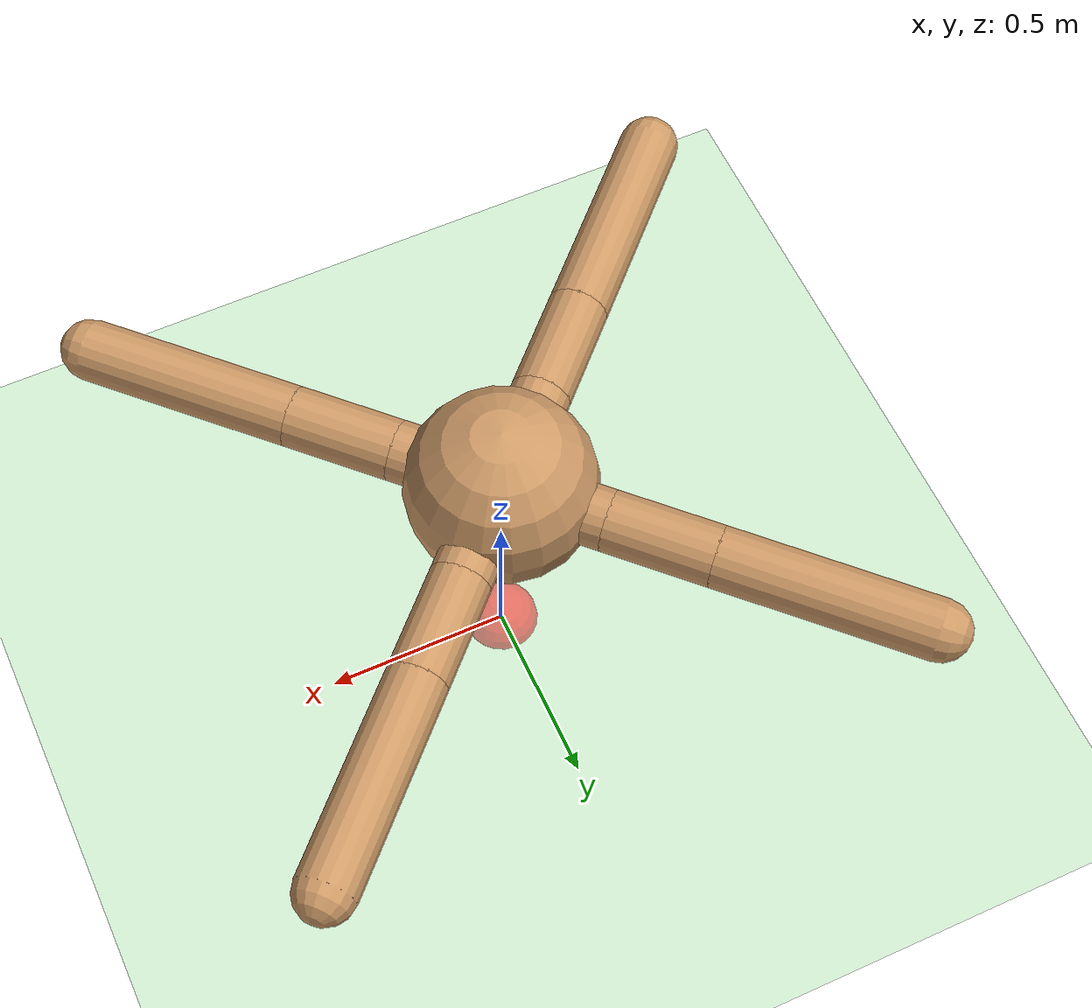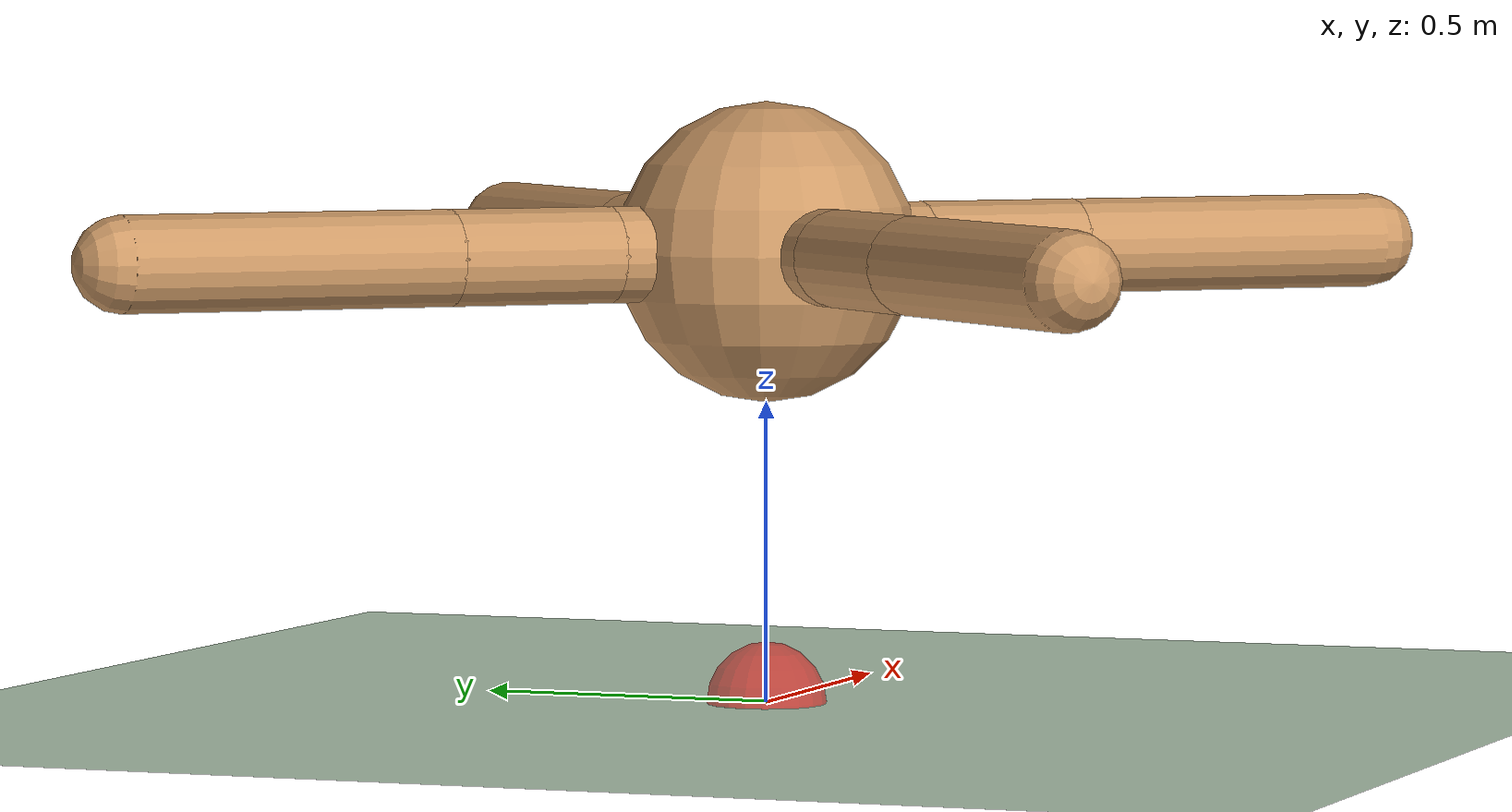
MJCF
<!-- Same a gymnasium ant but with sites -->
<mujoco model="ant">
<compiler angle="degree" coordinate="local" inertiafromgeom="true"/>
<option integrator="RK4" timestep="0.01"/>
<custom>
  <numeric data="0.0 0.0 0.55 1.0 0.0 0.0 0.0 0.0 1.0 0.0 -1.0 0.0 -1.0 0.0 1.0" name="init_qpos"/>
</custom>
<default>
  <joint armature="1" damping="1" limited="true"/>
  <geom conaffinity="0" condim="3" density="5.0" friction="1 0.5 0.5" margin="0.01" rgba="0.8 0.6 0.4 1"/>
</default>
<asset>
  <texture builtin="gradient" height="100" rgb1="1 1 1" rgb2="0 0 0" type="skybox" width="100"/>
  <texture builtin="flat" height="1278" mark="cross" markrgb="1 1 1" name="texgeom" random="0.01" rgb1="0.8 0.6 0.4" rgb2="0.8 0.6 0.4" type="cube" width="127"/>
  <texture builtin="checker" height="100" name="texplane" rgb1="0 0 0" rgb2="0.8 0.8 0.8" type="2d" width="100"/>
  <material name="MatPlane" reflectance="0.5" shininess="1" specular="1" texrepeat="60 60" texture="texplane"/>
  <material name="geom" texture="texgeom" texuniform="true"/>
</asset>
<worldbody>
  <light cutoff="100" diffuse="1 1 1" dir="-0 0 -1.3" directional="true" exponent="1" pos="0 0 1.3" specular=".1 .1 .1"/>
  <geom conaffinity="1" condim="3" material="MatPlane" name="floor" pos="0 0 0" rgba="0.8 0.9 0.8 1" size="40 40 40" type="plane"/>
  <body name="torso" pos="0 0 0.75">
    <geom name="torso_geom" pos="0 0 0" size="0.25" type="sphere"/>
    <joint armature="0" damping="0" limited="false" margin="0.01" name="root" pos="0 0 0" type="free"/>
    <body name="front_left_leg" pos="0 0 0">
      <geom fromto="0.0 0.0 0.0 0.2 0.2 0.0" name="aux_1_geom" size="0.08" type="capsule"/>
      <body name="aux_1" pos="0.2 0.2 0">
        <joint axis="0 0 1" name="hip_1" pos="0.0 0.0 0.0" range="-30 30" type="hinge"/>
        <geom fromto="0.0 0.0 0.0 0.2 0.2 0.0" name="left_leg_geom" size="0.08" type="capsule"/>
        <body pos="0.2 0.2 0">
          <joint axis="-1 1 0" name="ankle_1" pos="0.0 0.0 0.0" range="30 70" type="hinge"/>
          <geom fromto="0.0 0.0 0.0 0.4 0.4 0.0" name="left_ankle_geom" size="0.08" type="capsule"/>
        </body>
      </body>
    </body>
    <body name="front_right_leg" pos="0 0 0">
      <geom fromto="0.0 0.0 0.0 -0.2 0.2 0.0" name="aux_2_geom" size="0.08" type="capsule"/>
      <body name="aux_2" pos="-0.2 0.2 0">
        <joint axis="0 0 1" name="hip_2" pos="0.0 0.0 0.0" range="-30 30" type="hinge"/>
        <geom fromto="0.0 0.0 0.0 -0.2 0.2 0.0" name="right_leg_geom" size="0.08" type="capsule"/>
        <body pos="-0.2 0.2 0">
          <joint axis="1 1 0" name="ankle_2" pos="0.0 0.0 0.0" range="-70 -30" type="hinge"/>
          <geom fromto="0.0 0.0 0.0 -0.4 0.4 0.0" name="right_ankle_geom" size="0.08" type="capsule"/>
        </body>
      </body>
    </body>
    <body name="back_leg" pos="0 0 0">
      <geom fromto="0.0 0.0 0.0 -0.2 -0.2 0.0" name="aux_3_geom" size="0.08" type="capsule"/>
      <body name="aux_3" pos="-0.2 -0.2 0">
        <joint axis="0 0 1" name="hip_3" pos="0.0 0.0 0.0" range="-30 30" type="hinge"/>
        <geom fromto="0.0 0.0 0.0 -0.2 -0.2 0.0" name="back_leg_geom" size="0.08" type="capsule"/>
        <body pos="-0.2 -0.2 0">
          <joint axis="-1 1 0" name="ankle_3" pos="0.0 0.0 0.0" range="-70 -30" type="hinge"/>
          <geom fromto="0.0 0.0 0.0 -0.4 -0.4 0.0" name="third_ankle_geom" size="0.08" type="capsule"/>
        </body>
      </body>
    </body>
    <body name="right_back_leg" pos="0 0 0">
      <geom fromto="0.0 0.0 0.0 0.2 -0.2 0.0" name="aux_4_geom" size="0.08" type="capsule"/>
      <body name="aux_4" pos="0.2 -0.2 0">
        <joint axis="0 0 1" name="hip_4" pos="0.0 0.0 0.0" range="-30 30" type="hinge"/>
        <geom fromto="0.0 0.0 0.0 0.2 -0.2 0.0" name="rightback_leg_geom" size="0.08" type="capsule"/>
        <body pos="0.2 -0.2 0">
          <joint axis="1 1 0" name="ankle_4" pos="0.0 0.0 0.0" range="30 70" type="hinge"/>
          <geom fromto="0.0 0.0 0.0 0.4 -0.4 0.0" name="fourth_ankle_geom" size="0.08" type="capsule"/>
        </body>
      </body>
    </body>
  </body>
  <!--Create a goal version of the ant for visualization-->
  <body name="goal_torso" pos="0 0 0.75">
    <geom name="goal_torso_geom" pos="0 0 0" size="0.25" type="sphere" conaffinity="0" rgba="0.8 0.8 0.3 0.35" density="0.1"/>
    <joint armature="0" damping="0" limited="false" margin="0.01" name="goal_root" pos="0 0 0" type="free"/>
    <body name="goal_front_left_leg" pos="0 0 0">
      <geom fromto="0.0 0.0 0.0 0.2 0.2 0.0" name="goal_aux_1_geom" size="0.08" type="capsule" conaffinity="0" rgba="0.8 0.8 0.3 0.35"/>
      <body name="goal_aux_1" pos="0.2 0.2 0">
        <joint axis="0 0 1" name="goal_hip_1" pos="0.0 0.0 0.0" range="-30 30" type="hinge"/>
        <geom fromto="0.0 0.0 0.0 0.2 0.2 0.0" name="goal_left_leg_geom" size="0.08" type="capsule" conaffinity="0" rgba="0.8 0.8 0.3 0.35"/>
        <body pos="0.2 0.2 0">
          <joint axis="-1 1 0" name="goal_ankle_1" pos="0.0 0.0 0.0" range="30 70" type="hinge"/>
          <geom fromto="0.0 0.0 0.0 0.4 0.4 0.0" name="goal_left_ankle_geom" size="0.08" type="capsule" conaffinity="0" rgba="0.8 0.8 0.3 0.35"/>
        </body>
      </body>
    </body>
    <body name="goal_front_right_leg" pos="0 0 0">
      <geom fromto="0.0 0.0 0.0 -0.2 0.2 0.0" name="goal_aux_2_geom" size="0.08" type="capsule" conaffinity="0" rgba="0.8 0.8 0.3 0.35"/>
      <body name="goal_aux_2" pos="-0.2 0.2 0">
        <joint axis="0 0 1" name="goal_hip_2" pos="0.0 0.0 0.0" range="-30 30" type="hinge"/>
        <geom fromto="0.0 0.0 0.0 -0.2 0.2 0.0" name="goal_right_leg_geom" size="0.08" type="capsule" conaffinity="0" rgba="0.8 0.8 0.3 0.35"/>
        <body pos="-0.2 0.2 0">
          <joint axis="1 1 0" name="goal_ankle_2" pos="0.0 0.0 0.0" range="-70 -30" type="hinge"/>
          <geom fromto="0.0 0.0 0.0 -0.4 0.4 0.0" name="goal_right_ankle_geom" size="0.08" type="capsule" conaffinity="0" rgba="0.8 0.8 0.3 0.35"/>
        </body>
      </body>
    </body>
    <body name="goal_back_leg" pos="0 0 0">
      <geom fromto="0.0 0.0 0.0 -0.2 -0.2 0.0" name="goal_aux_3_geom" size="0.08" type="capsule" conaffinity="0" rgba="0.8 0.8 0.3 0.35"/>
      <body name="goal_aux_3" pos="-0.2 -0.2 0">
        <joint axis="0 0 1" name="goal_hip_3" pos="0.0 0.0 0.0" range="-30 30" type="hinge"/>
        <geom fromto="0.0 0.0 0.0 -0.2 -0.2 0.0" name="goal_back_leg_geom" size="0.08" type="capsule" conaffinity="0" rgba="0.8 0.8 0.3 0.35"/>
        <body pos="-0.2 -0.2 0">
          <joint axis="-1 1 0" name="goal_ankle_3" pos="0.0 0.0 0.0" range="-70 -30" type="hinge"/>
          <geom fromto="0.0 0.0 0.0 -0.4 -0.4 0.0" name="goal_third_ankle_geom" size="0.08" type="capsule" conaffinity="0" rgba="0.8 0.8 0.3 0.35"/>
        </body>
      </body>
    </body>
    <body name="goal_right_back_leg" pos="0 0 0">
      <geom fromto="0.0 0.0 0.0 0.2 -0.2 0.0" name="goal_aux_4_geom" size="0.08" type="capsule" conaffinity="0" rgba="0.8 0.8 0.3 0.35"/>
      <body name="goal_aux_4" pos="0.2 -0.2 0">
        <joint axis="0 0 1" name="goal_hip_4" pos="0.0 0.0 0.0" range="-30 30" type="hinge"/>
        <geom fromto="0.0 0.0 0.0 0.2 -0.2 0.0" name="goal_rightback_leg_geom" size="0.08" type="capsule" conaffinity="0" rgba="0.8 0.8 0.3 0.35"/>
        <body pos="0.2 -0.2 0">
          <joint axis="1 1 0" name="goal_ankle_4" pos="0.0 0.0 0.0" range="30 70" type="hinge"/>
          <geom fromto="0.0 0.0 0.0 0.4 -0.4 0.0" name="goal_fourth_ankle_geom" size="0.08" type="capsule" conaffinity="0" rgba="0.8 0.8 0.3 0.35"/>
        </body>
      </body>
    </body>
  </body>
  <site name="origin" rgba="1 0 0 0.5" pos="0. 0. 0." size="0.1" />
</worldbody>
<actuator>
  <motor ctrllimited="true" ctrlrange="-1.0 1.0" joint="hip_4" gear="120"/>
  <motor ctrllimited="true" ctrlrange="-1.0 1.0" joint="ankle_4" gear="120"/>
  <motor ctrllimited="true" ctrlrange="-1.0 1.0" joint="hip_1" gear="120"/>
  <motor ctrllimited="true" ctrlrange="-1.0 1.0" joint="ankle_1" gear="120"/>
  <motor ctrllimited="true" ctrlrange="-1.0 1.0" joint="hip_2" gear="120"/>
  <motor ctrllimited="true" ctrlrange="-1.0 1.0" joint="ankle_2" gear="120"/>
  <motor ctrllimited="true" ctrlrange="-1.0 1.0" joint="hip_3" gear="120"/>
  <motor ctrllimited="true" ctrlrange="-1.0 1.0" joint="ankle_3" gear="120"/>
</actuator>
</mujoco>
